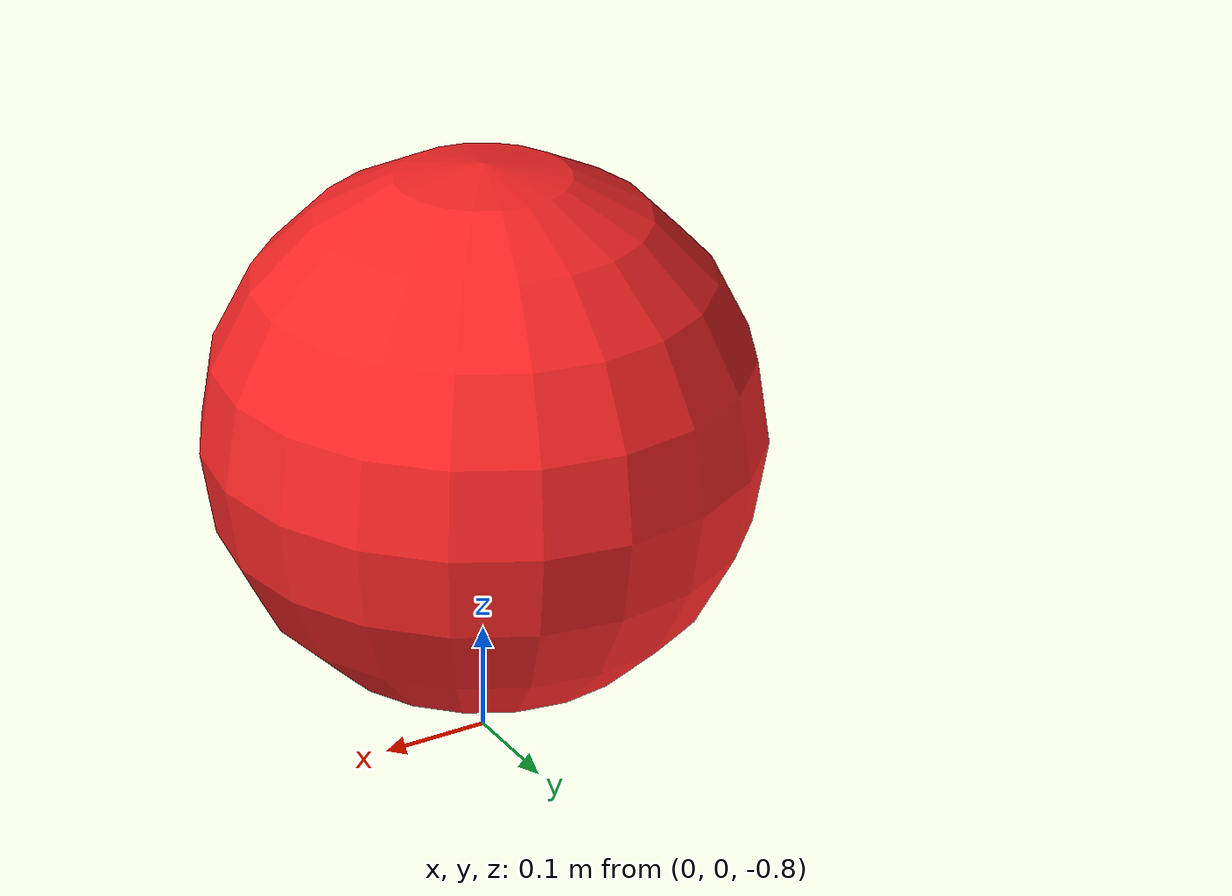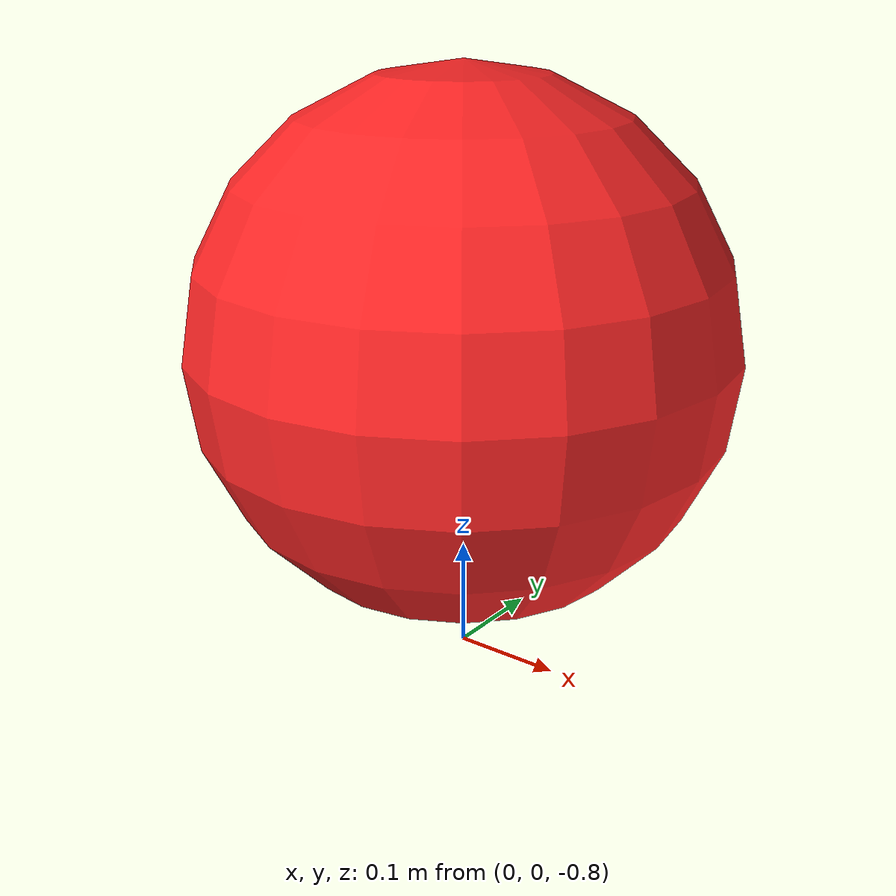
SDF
<?xml version="1.0"?>
<sdf version="1.9">
  <model name="marv_home_buoy">
    <static>true</static>
    <link name="link">
      <visual name="buoy">
        <pose>0 0 -0.5 0 0 0</pose>
        <geometry>
          <sphere>
            <radius>0.25</radius>
          </sphere>
        </geometry>
        <material>
          <ambient>0.8 0.1 0.1 1</ambient>
          <diffuse>1 0.15 0.15 1</diffuse>
        </material>
      </visual>
      <collision name="buoy_collision">
        <pose>0 0 -0.5 0 0 0</pose>
        <geometry>
          <sphere>
            <radius>0.25</radius>
          </sphere>
        </geometry>
      </collision>
    </link>
  </model>
</sdf>
